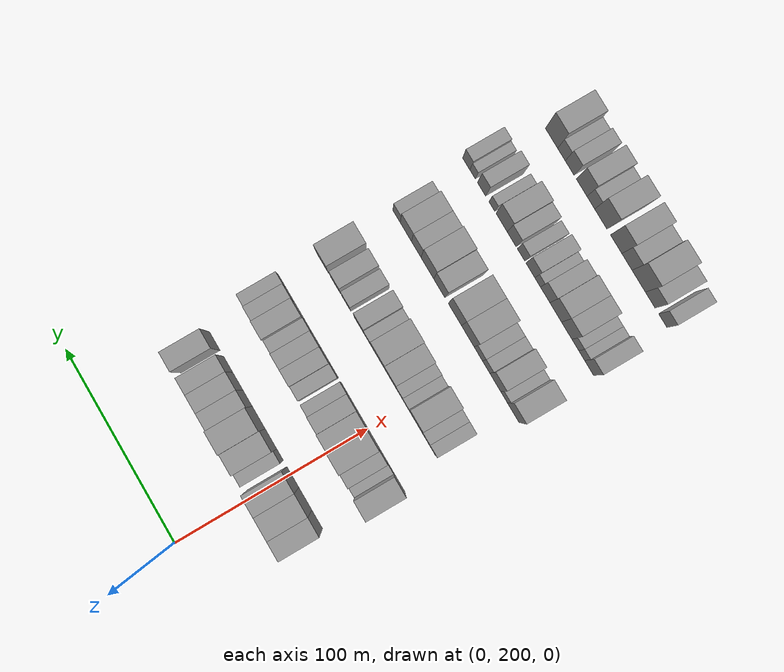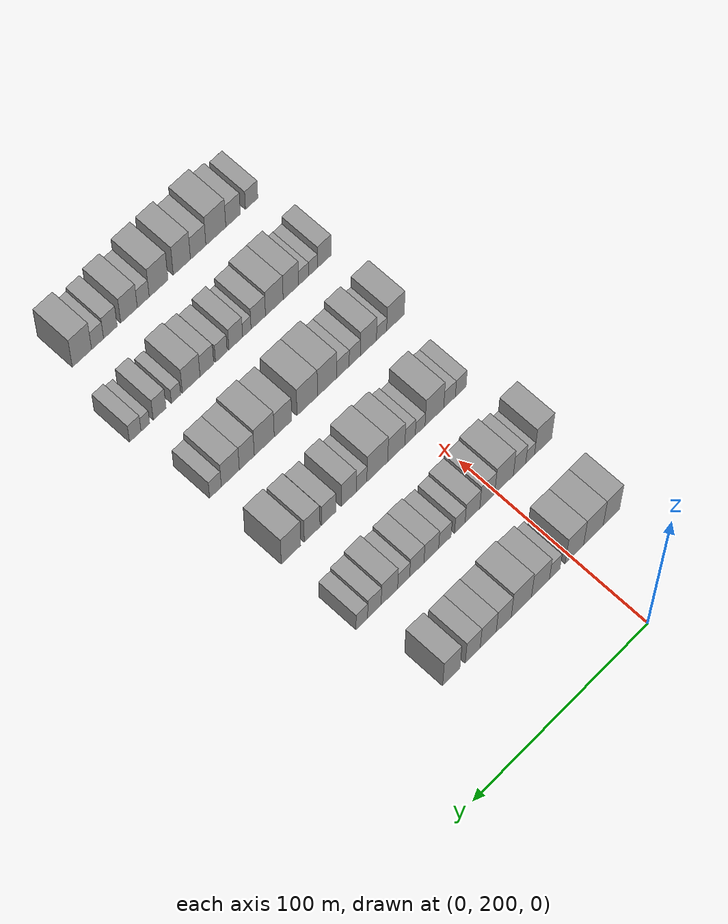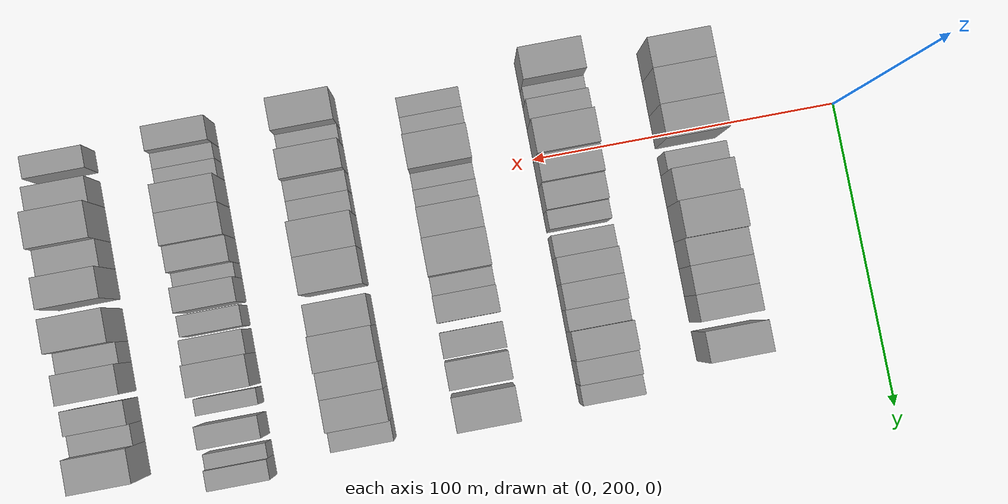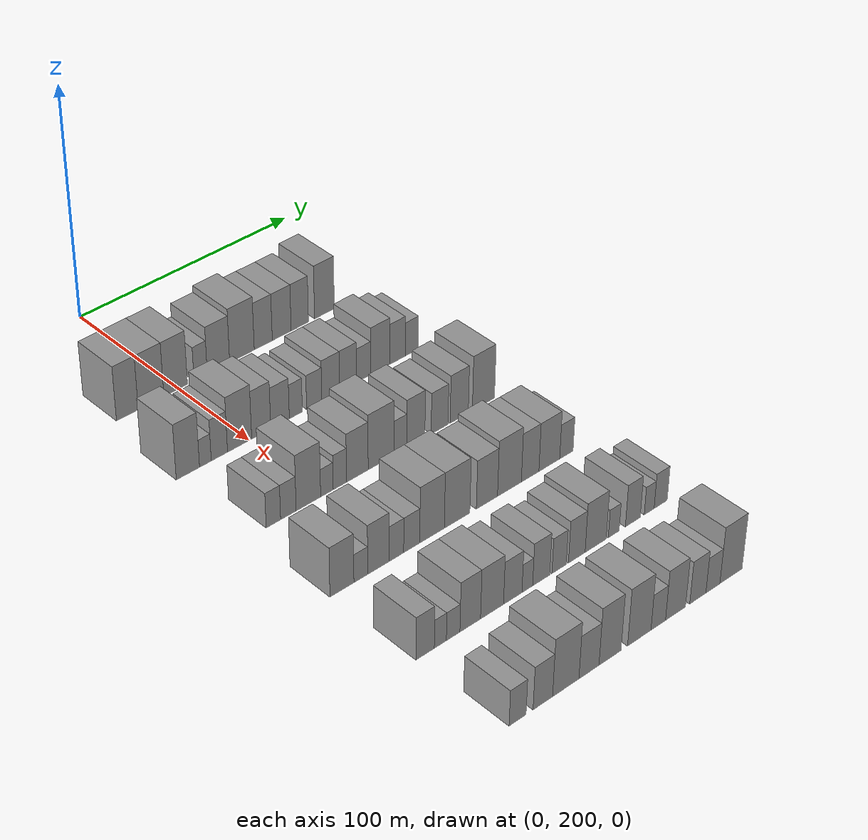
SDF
<sdf version="1.6">
 <world name="default">
  <model name="building_87">
   <static>1</static>
   <pose>50.0000 176.8110 0 0.000000 0.000000 0.000000</pose>
   <link name="link">
    <pose>0 0 12.00 0 0 0</pose>
    <collision name="collision"><geometry><box><size>20.0000 9.6549 24.0000</size></box></geometry></collision>
    <visual name="visual">
     <cast_shadows>0</cast_shadows>
     <geometry><box><size>20.0000 9.6549 24.0000</size></box></geometry>
     <material>
      <script>
       <uri>model://grey_wall/materials/scripts</uri>
       <uri>model://grey_wall/materials/textures</uri>
       <name>vrc/grey_wall</name>
      </script>
     </material>
    </visual>
   </link>
  </model>
  <model name="building_88">
   <static>1</static>
   <pose>50.0000 187.3847 0 0.000000 0.000000 0.000000</pose>
   <link name="link">
    <pose>0 0 12.00 0 0 0</pose>
    <collision name="collision"><geometry><box><size>20.0000 11.4924 24.0000</size></box></geometry></collision>
    <visual name="visual">
     <cast_shadows>0</cast_shadows>
     <geometry><box><size>20.0000 11.4924 24.0000</size></box></geometry>
     <material>
      <script>
       <uri>model://grey_wall/materials/scripts</uri>
       <uri>model://grey_wall/materials/textures</uri>
       <name>vrc/grey_wall</name>
      </script>
     </material>
    </visual>
   </link>
  </model>
  <model name="building_89">
   <static>1</static>
   <pose>50.0000 198.4945 0 0.000000 0.000000 0.000000</pose>
   <link name="link">
    <pose>0 0 12.00 0 0 0</pose>
    <collision name="collision"><geometry><box><size>20.0000 10.7272 24.0000</size></box></geometry></collision>
    <visual name="visual">
     <cast_shadows>0</cast_shadows>
     <geometry><box><size>20.0000 10.7272 24.0000</size></box></geometry>
     <material>
      <script>
       <uri>model://grey_wall/materials/scripts</uri>
       <uri>model://grey_wall/materials/textures</uri>
       <name>vrc/grey_wall</name>
      </script>
     </material>
    </visual>
   </link>
  </model>
  <model name="building_90">
   <static>1</static>
   <pose>50.0000 209.9155 0 0.000000 0.000000 0.000000</pose>
   <link name="link">
    <pose>0 0 7.50 0 0 0</pose>
    <collision name="collision"><geometry><box><size>20.0000 6.1148 15.0000</size></box></geometry></collision>
    <visual name="visual">
     <cast_shadows>0</cast_shadows>
     <geometry><box><size>20.0000 6.1148 15.0000</size></box></geometry>
     <material>
      <script>
       <uri>model://grey_wall/materials/scripts</uri>
       <uri>model://grey_wall/materials/textures</uri>
       <name>vrc/grey_wall</name>
      </script>
     </material>
    </visual>
   </link>
  </model>
  <model name="building_91">
   <static>1</static>
   <pose>50.0000 218.1866 0 0.000000 0.000000 0.000000</pose>
   <link name="link">
    <pose>0 0 10.50 0 0 0</pose>
    <collision name="collision"><geometry><box><size>20.0000 10.4274 21.0000</size></box></geometry></collision>
    <visual name="visual">
     <cast_shadows>0</cast_shadows>
     <geometry><box><size>20.0000 10.4274 21.0000</size></box></geometry>
     <material>
      <script>
       <uri>model://grey_wall/materials/scripts</uri>
       <uri>model://grey_wall/materials/textures</uri>
       <name>vrc/grey_wall</name>
      </script>
     </material>
    </visual>
   </link>
  </model>
  <model name="building_92">
   <static>1</static>
   <pose>50.0000 229.2195 0 0.000000 0.000000 0.000000</pose>
   <link name="link">
    <pose>0 0 12.00 0 0 0</pose>
    <collision name="collision"><geometry><box><size>20.0000 11.6385 24.0000</size></box></geometry></collision>
    <visual name="visual">
     <cast_shadows>0</cast_shadows>
     <geometry><box><size>20.0000 11.6385 24.0000</size></box></geometry>
     <material>
      <script>
       <uri>model://grey_wall/materials/scripts</uri>
       <uri>model://grey_wall/materials/textures</uri>
       <name>vrc/grey_wall</name>
      </script>
     </material>
    </visual>
   </link>
  </model>
  <model name="building_93">
   <static>1</static>
   <pose>50.0000 239.3570 0 0.000000 0.000000 0.000000</pose>
   <link name="link">
    <pose>0 0 10.50 0 0 0</pose>
    <collision name="collision"><geometry><box><size>20.0000 8.6364 21.0000</size></box></geometry></collision>
    <visual name="visual">
     <cast_shadows>0</cast_shadows>
     <geometry><box><size>20.0000 8.6364 21.0000</size></box></geometry>
     <material>
      <script>
       <uri>model://grey_wall/materials/scripts</uri>
       <uri>model://grey_wall/materials/textures</uri>
       <name>vrc/grey_wall</name>
      </script>
     </material>
    </visual>
   </link>
  </model>
  <model name="building_94">
   <static>1</static>
   <pose>50.0000 248.2365 0 0.000000 0.000000 0.000000</pose>
   <link name="link">
    <pose>0 0 10.50 0 0 0</pose>
    <collision name="collision"><geometry><box><size>20.0000 9.1226 21.0000</size></box></geometry></collision>
    <visual name="visual">
     <cast_shadows>0</cast_shadows>
     <geometry><box><size>20.0000 9.1226 21.0000</size></box></geometry>
     <material>
      <script>
       <uri>model://grey_wall/materials/scripts</uri>
       <uri>model://grey_wall/materials/textures</uri>
       <name>vrc/grey_wall</name>
      </script>
     </material>
    </visual>
   </link>
  </model>
  <model name="building_95">
   <static>1</static>
   <pose>50.0000 257.0243 0 0.000000 0.000000 0.000000</pose>
   <link name="link">
    <pose>0 0 10.50 0 0 0</pose>
    <collision name="collision"><geometry><box><size>20.0000 8.4530 21.0000</size></box></geometry></collision>
    <visual name="visual">
     <cast_shadows>0</cast_shadows>
     <geometry><box><size>20.0000 8.4530 21.0000</size></box></geometry>
     <material>
      <script>
       <uri>model://grey_wall/materials/scripts</uri>
       <uri>model://grey_wall/materials/textures</uri>
       <name>vrc/grey_wall</name>
      </script>
     </material>
    </visual>
   </link>
  </model>
  <model name="building_96">
   <static>1</static>
   <pose>50.0000 269.1460 0 0.000000 0.000000 0.000000</pose>
   <link name="link">
    <pose>0 0 12.00 0 0 0</pose>
    <collision name="collision"><geometry><box><size>20.0000 9.7904 24.0000</size></box></geometry></collision>
    <visual name="visual">
     <cast_shadows>0</cast_shadows>
     <geometry><box><size>20.0000 9.7904 24.0000</size></box></geometry>
     <material>
      <script>
       <uri>model://grey_wall/materials/scripts</uri>
       <uri>model://grey_wall/materials/textures</uri>
       <name>vrc/grey_wall</name>
      </script>
     </material>
    </visual>
   </link>
  </model>
  <model name="building_229">
   <static>1</static>
   <pose>90.0000 172.6757 0 0.000000 0.000000 0.000000</pose>
   <link name="link">
    <pose>0 0 12.00 0 0 0</pose>
    <collision name="collision"><geometry><box><size>20.0000 10.1629 24.0000</size></box></geometry></collision>
    <visual name="visual">
     <cast_shadows>0</cast_shadows>
     <geometry><box><size>20.0000 10.1629 24.0000</size></box></geometry>
     <material>
      <script>
       <uri>model://grey_wall/materials/scripts</uri>
       <uri>model://grey_wall/materials/textures</uri>
       <name>vrc/grey_wall</name>
      </script>
     </material>
    </visual>
   </link>
  </model>
  <model name="building_230">
   <static>1</static>
   <pose>90.0000 180.3348 0 0.000000 0.000000 0.000000</pose>
   <link name="link">
    <pose>0 0 6.00 0 0 0</pose>
    <collision name="collision"><geometry><box><size>20.0000 5.1553 12.0000</size></box></geometry></collision>
    <visual name="visual">
     <cast_shadows>0</cast_shadows>
     <geometry><box><size>20.0000 5.1553 12.0000</size></box></geometry>
     <material>
      <script>
       <uri>model://grey_wall/materials/scripts</uri>
       <uri>model://grey_wall/materials/textures</uri>
       <name>vrc/grey_wall</name>
      </script>
     </material>
    </visual>
   </link>
  </model>
  <model name="building_231">
   <static>1</static>
   <pose>90.0000 186.5304 0 0.000000 0.000000 0.000000</pose>
   <link name="link">
    <pose>0 0 9.00 0 0 0</pose>
    <collision name="collision"><geometry><box><size>20.0000 7.2361 18.0000</size></box></geometry></collision>
    <visual name="visual">
     <cast_shadows>0</cast_shadows>
     <geometry><box><size>20.0000 7.2361 18.0000</size></box></geometry>
     <material>
      <script>
       <uri>model://grey_wall/materials/scripts</uri>
       <uri>model://grey_wall/materials/textures</uri>
       <name>vrc/grey_wall</name>
      </script>
     </material>
    </visual>
   </link>
  </model>
  <model name="building_232">
   <static>1</static>
   <pose>90.0000 195.5879 0 0.000000 0.000000 0.000000</pose>
   <link name="link">
    <pose>0 0 12.00 0 0 0</pose>
    <collision name="collision"><geometry><box><size>20.0000 10.8789 24.0000</size></box></geometry></collision>
    <visual name="visual">
     <cast_shadows>0</cast_shadows>
     <geometry><box><size>20.0000 10.8789 24.0000</size></box></geometry>
     <material>
      <script>
       <uri>model://grey_wall/materials/scripts</uri>
       <uri>model://grey_wall/materials/textures</uri>
       <name>vrc/grey_wall</name>
      </script>
     </material>
    </visual>
   </link>
  </model>
  <model name="building_233">
   <static>1</static>
   <pose>90.0000 205.3652 0 0.000000 0.000000 0.000000</pose>
   <link name="link">
    <pose>0 0 10.50 0 0 0</pose>
    <collision name="collision"><geometry><box><size>20.0000 8.6756 21.0000</size></box></geometry></collision>
    <visual name="visual">
     <cast_shadows>0</cast_shadows>
     <geometry><box><size>20.0000 8.6756 21.0000</size></box></geometry>
     <material>
      <script>
       <uri>model://grey_wall/materials/scripts</uri>
       <uri>model://grey_wall/materials/textures</uri>
       <name>vrc/grey_wall</name>
      </script>
     </material>
    </visual>
   </link>
  </model>
  <model name="building_234">
   <static>1</static>
   <pose>90.0000 213.9725 0 0.000000 0.000000 0.000000</pose>
   <link name="link">
    <pose>0 0 9.00 0 0 0</pose>
    <collision name="collision"><geometry><box><size>20.0000 8.5390 18.0000</size></box></geometry></collision>
    <visual name="visual">
     <cast_shadows>0</cast_shadows>
     <geometry><box><size>20.0000 8.5390 18.0000</size></box></geometry>
     <material>
      <script>
       <uri>model://grey_wall/materials/scripts</uri>
       <uri>model://grey_wall/materials/textures</uri>
       <name>vrc/grey_wall</name>
      </script>
     </material>
    </visual>
   </link>
  </model>
  <model name="building_235">
   <static>1</static>
   <pose>90.0000 221.2577 0 0.000000 0.000000 0.000000</pose>
   <link name="link">
    <pose>0 0 7.50 0 0 0</pose>
    <collision name="collision"><geometry><box><size>20.0000 6.0314 15.0000</size></box></geometry></collision>
    <visual name="visual">
     <cast_shadows>0</cast_shadows>
     <geometry><box><size>20.0000 6.0314 15.0000</size></box></geometry>
     <material>
      <script>
       <uri>model://grey_wall/materials/scripts</uri>
       <uri>model://grey_wall/materials/textures</uri>
       <name>vrc/grey_wall</name>
      </script>
     </material>
    </visual>
   </link>
  </model>
  <model name="building_236">
   <static>1</static>
   <pose>90.0000 229.8461 0 0.000000 0.000000 0.000000</pose>
   <link name="link">
    <pose>0 0 7.50 0 0 0</pose>
    <collision name="collision"><geometry><box><size>20.0000 7.1454 15.0000</size></box></geometry></collision>
    <visual name="visual">
     <cast_shadows>0</cast_shadows>
     <geometry><box><size>20.0000 7.1454 15.0000</size></box></geometry>
     <material>
      <script>
       <uri>model://grey_wall/materials/scripts</uri>
       <uri>model://grey_wall/materials/textures</uri>
       <name>vrc/grey_wall</name>
      </script>
     </material>
    </visual>
   </link>
  </model>
  <model name="building_237">
   <static>1</static>
   <pose>90.0000 237.6304 0 0.000000 0.000000 0.000000</pose>
   <link name="link">
    <pose>0 0 9.00 0 0 0</pose>
    <collision name="collision"><geometry><box><size>20.0000 8.4232 18.0000</size></box></geometry></collision>
    <visual name="visual">
     <cast_shadows>0</cast_shadows>
     <geometry><box><size>20.0000 8.4232 18.0000</size></box></geometry>
     <material>
      <script>
       <uri>model://grey_wall/materials/scripts</uri>
       <uri>model://grey_wall/materials/textures</uri>
       <name>vrc/grey_wall</name>
      </script>
     </material>
    </visual>
   </link>
  </model>
  <model name="building_238">
   <static>1</static>
   <pose>90.0000 245.9011 0 0.000000 0.000000 0.000000</pose>
   <link name="link">
    <pose>0 0 9.00 0 0 0</pose>
    <collision name="collision"><geometry><box><size>20.0000 8.1182 18.0000</size></box></geometry></collision>
    <visual name="visual">
     <cast_shadows>0</cast_shadows>
     <geometry><box><size>20.0000 8.1182 18.0000</size></box></geometry>
     <material>
      <script>
       <uri>model://grey_wall/materials/scripts</uri>
       <uri>model://grey_wall/materials/textures</uri>
       <name>vrc/grey_wall</name>
      </script>
     </material>
    </visual>
   </link>
  </model>
  <model name="building_239">
   <static>1</static>
   <pose>90.0000 253.3798 0 0.000000 0.000000 0.000000</pose>
   <link name="link">
    <pose>0 0 7.50 0 0 0</pose>
    <collision name="collision"><geometry><box><size>20.0000 6.8392 15.0000</size></box></geometry></collision>
    <visual name="visual">
     <cast_shadows>0</cast_shadows>
     <geometry><box><size>20.0000 6.8392 15.0000</size></box></geometry>
     <material>
      <script>
       <uri>model://grey_wall/materials/scripts</uri>
       <uri>model://grey_wall/materials/textures</uri>
       <name>vrc/grey_wall</name>
      </script>
     </material>
    </visual>
   </link>
  </model>
  <model name="building_240">
   <static>1</static>
   <pose>90.0000 261.4753 0 0.000000 0.000000 0.000000</pose>
   <link name="link">
    <pose>0 0 10.50 0 0 0</pose>
    <collision name="collision"><geometry><box><size>20.0000 9.3518 21.0000</size></box></geometry></collision>
    <visual name="visual">
     <cast_shadows>0</cast_shadows>
     <geometry><box><size>20.0000 9.3518 21.0000</size></box></geometry>
     <material>
      <script>
       <uri>model://grey_wall/materials/scripts</uri>
       <uri>model://grey_wall/materials/textures</uri>
       <name>vrc/grey_wall</name>
      </script>
     </material>
    </visual>
   </link>
  </model>
  <model name="building_241">
   <static>1</static>
   <pose>90.0000 269.9665 0 0.000000 0.000000 0.000000</pose>
   <link name="link">
    <pose>0 0 9.00 0 0 0</pose>
    <collision name="collision"><geometry><box><size>20.0000 7.6307 18.0000</size></box></geometry></collision>
    <visual name="visual">
     <cast_shadows>0</cast_shadows>
     <geometry><box><size>20.0000 7.6307 18.0000</size></box></geometry>
     <material>
      <script>
       <uri>model://grey_wall/materials/scripts</uri>
       <uri>model://grey_wall/materials/textures</uri>
       <name>vrc/grey_wall</name>
      </script>
     </material>
    </visual>
   </link>
  </model>
  <model name="building_242">
   <static>1</static>
   <pose>90.0000 277.0421 0 0.000000 0.000000 0.000000</pose>
   <link name="link">
    <pose>0 0 7.50 0 0 0</pose>
    <collision name="collision"><geometry><box><size>20.0000 6.5205 15.0000</size></box></geometry></collision>
    <visual name="visual">
     <cast_shadows>0</cast_shadows>
     <geometry><box><size>20.0000 6.5205 15.0000</size></box></geometry>
     <material>
      <script>
       <uri>model://grey_wall/materials/scripts</uri>
       <uri>model://grey_wall/materials/textures</uri>
       <name>vrc/grey_wall</name>
      </script>
     </material>
    </visual>
   </link>
  </model>
  <model name="building_365">
   <static>1</static>
   <pose>130.0000 177.6103 0 0.000000 0.000000 0.000000</pose>
   <link name="link">
    <pose>0 0 7.50 0 0 0</pose>
    <collision name="collision"><geometry><box><size>20.0000 6.3147 15.0000</size></box></geometry></collision>
    <visual name="visual">
     <cast_shadows>0</cast_shadows>
     <geometry><box><size>20.0000 6.3147 15.0000</size></box></geometry>
     <material>
      <script>
       <uri>model://grey_wall/materials/scripts</uri>
       <uri>model://grey_wall/materials/textures</uri>
       <name>vrc/grey_wall</name>
      </script>
     </material>
    </visual>
   </link>
  </model>
  <model name="building_366">
   <static>1</static>
   <pose>130.0000 184.1811 0 0.000000 0.000000 0.000000</pose>
   <link name="link">
    <pose>0 0 7.50 0 0 0</pose>
    <collision name="collision"><geometry><box><size>20.0000 6.8270 15.0000</size></box></geometry></collision>
    <visual name="visual">
     <cast_shadows>0</cast_shadows>
     <geometry><box><size>20.0000 6.8270 15.0000</size></box></geometry>
     <material>
      <script>
       <uri>model://grey_wall/materials/scripts</uri>
       <uri>model://grey_wall/materials/textures</uri>
       <name>vrc/grey_wall</name>
      </script>
     </material>
    </visual>
   </link>
  </model>
  <model name="building_367">
   <static>1</static>
   <pose>130.0000 193.0386 0 0.000000 0.000000 0.000000</pose>
   <link name="link">
    <pose>0 0 12.00 0 0 0</pose>
    <collision name="collision"><geometry><box><size>20.0000 10.8879 24.0000</size></box></geometry></collision>
    <visual name="visual">
     <cast_shadows>0</cast_shadows>
     <geometry><box><size>20.0000 10.8879 24.0000</size></box></geometry>
     <material>
      <script>
       <uri>model://grey_wall/materials/scripts</uri>
       <uri>model://grey_wall/materials/textures</uri>
       <name>vrc/grey_wall</name>
      </script>
     </material>
    </visual>
   </link>
  </model>
  <model name="building_368">
   <static>1</static>
   <pose>130.0000 201.3104 0 0.000000 0.000000 0.000000</pose>
   <link name="link">
    <pose>0 0 6.00 0 0 0</pose>
    <collision name="collision"><geometry><box><size>20.0000 5.6557 12.0000</size></box></geometry></collision>
    <visual name="visual">
     <cast_shadows>0</cast_shadows>
     <geometry><box><size>20.0000 5.6557 12.0000</size></box></geometry>
     <material>
      <script>
       <uri>model://grey_wall/materials/scripts</uri>
       <uri>model://grey_wall/materials/textures</uri>
       <name>vrc/grey_wall</name>
      </script>
     </material>
    </visual>
   </link>
  </model>
  <model name="building_369">
   <static>1</static>
   <pose>130.0000 207.1561 0 0.000000 0.000000 0.000000</pose>
   <link name="link">
    <pose>0 0 7.50 0 0 0</pose>
    <collision name="collision"><geometry><box><size>20.0000 6.0357 15.0000</size></box></geometry></collision>
    <visual name="visual">
     <cast_shadows>0</cast_shadows>
     <geometry><box><size>20.0000 6.0357 15.0000</size></box></geometry>
     <material>
      <script>
       <uri>model://grey_wall/materials/scripts</uri>
       <uri>model://grey_wall/materials/textures</uri>
       <name>vrc/grey_wall</name>
      </script>
     </material>
    </visual>
   </link>
  </model>
  <model name="building_370">
   <static>1</static>
   <pose>130.0000 215.1298 0 0.000000 0.000000 0.000000</pose>
   <link name="link">
    <pose>0 0 10.50 0 0 0</pose>
    <collision name="collision"><geometry><box><size>20.0000 9.9116 21.0000</size></box></geometry></collision>
    <visual name="visual">
     <cast_shadows>0</cast_shadows>
     <geometry><box><size>20.0000 9.9116 21.0000</size></box></geometry>
     <material>
      <script>
       <uri>model://grey_wall/materials/scripts</uri>
       <uri>model://grey_wall/materials/textures</uri>
       <name>vrc/grey_wall</name>
      </script>
     </material>
    </visual>
   </link>
  </model>
  <model name="building_371">
   <static>1</static>
   <pose>130.0000 226.0778 0 0.000000 0.000000 0.000000</pose>
   <link name="link">
    <pose>0 0 12.00 0 0 0</pose>
    <collision name="collision"><geometry><box><size>20.0000 11.9844 24.0000</size></box></geometry></collision>
    <visual name="visual">
     <cast_shadows>0</cast_shadows>
     <geometry><box><size>20.0000 11.9844 24.0000</size></box></geometry>
     <material>
      <script>
       <uri>model://grey_wall/materials/scripts</uri>
       <uri>model://grey_wall/materials/textures</uri>
       <name>vrc/grey_wall</name>
      </script>
     </material>
    </visual>
   </link>
  </model>
  <model name="building_372">
   <static>1</static>
   <pose>130.0000 235.0966 0 0.000000 0.000000 0.000000</pose>
   <link name="link">
    <pose>0 0 7.50 0 0 0</pose>
    <collision name="collision"><geometry><box><size>20.0000 6.0532 15.0000</size></box></geometry></collision>
    <visual name="visual">
     <cast_shadows>0</cast_shadows>
     <geometry><box><size>20.0000 6.0532 15.0000</size></box></geometry>
     <material>
      <script>
       <uri>model://grey_wall/materials/scripts</uri>
       <uri>model://grey_wall/materials/textures</uri>
       <name>vrc/grey_wall</name>
      </script>
     </material>
    </visual>
   </link>
  </model>
  <model name="building_373">
   <static>1</static>
   <pose>130.0000 242.4002 0 0.000000 0.000000 0.000000</pose>
   <link name="link">
    <pose>0 0 10.50 0 0 0</pose>
    <collision name="collision"><geometry><box><size>20.0000 8.5541 21.0000</size></box></geometry></collision>
    <visual name="visual">
     <cast_shadows>0</cast_shadows>
     <geometry><box><size>20.0000 8.5541 21.0000</size></box></geometry>
     <material>
      <script>
       <uri>model://grey_wall/materials/scripts</uri>
       <uri>model://grey_wall/materials/textures</uri>
       <name>vrc/grey_wall</name>
      </script>
     </material>
    </visual>
   </link>
  </model>
  <model name="building_374">
   <static>1</static>
   <pose>130.0000 253.7446 0 0.000000 0.000000 0.000000</pose>
   <link name="link">
    <pose>0 0 9.00 0 0 0</pose>
    <collision name="collision"><geometry><box><size>20.0000 8.1347 18.0000</size></box></geometry></collision>
    <visual name="visual">
     <cast_shadows>0</cast_shadows>
     <geometry><box><size>20.0000 8.1347 18.0000</size></box></geometry>
     <material>
      <script>
       <uri>model://grey_wall/materials/scripts</uri>
       <uri>model://grey_wall/materials/textures</uri>
       <name>vrc/grey_wall</name>
      </script>
     </material>
    </visual>
   </link>
  </model>
  <model name="building_375">
   <static>1</static>
   <pose>130.0000 263.2402 0 0.000000 0.000000 0.000000</pose>
   <link name="link">
    <pose>0 0 10.50 0 0 0</pose>
    <collision name="collision"><geometry><box><size>20.0000 8.8566 21.0000</size></box></geometry></collision>
    <visual name="visual">
     <cast_shadows>0</cast_shadows>
     <geometry><box><size>20.0000 8.8566 21.0000</size></box></geometry>
     <material>
      <script>
       <uri>model://grey_wall/materials/scripts</uri>
       <uri>model://grey_wall/materials/textures</uri>
       <name>vrc/grey_wall</name>
      </script>
     </material>
    </visual>
   </link>
  </model>
  <model name="building_376">
   <static>1</static>
   <pose>130.0000 275.1409 0 0.000000 0.000000 0.000000</pose>
   <link name="link">
    <pose>0 0 12.00 0 0 0</pose>
    <collision name="collision"><geometry><box><size>20.0000 10.9447 24.0000</size></box></geometry></collision>
    <visual name="visual">
     <cast_shadows>0</cast_shadows>
     <geometry><box><size>20.0000 10.9447 24.0000</size></box></geometry>
     <material>
      <script>
       <uri>model://grey_wall/materials/scripts</uri>
       <uri>model://grey_wall/materials/textures</uri>
       <name>vrc/grey_wall</name>
      </script>
     </material>
    </visual>
   </link>
  </model>
  <model name="building_503">
   <static>1</static>
   <pose>170.0000 173.2018 0 0.000000 0.000000 0.000000</pose>
   <link name="link">
    <pose>0 0 10.50 0 0 0</pose>
    <collision name="collision"><geometry><box><size>20.0000 10.3179 21.0000</size></box></geometry></collision>
    <visual name="visual">
     <cast_shadows>0</cast_shadows>
     <geometry><box><size>20.0000 10.3179 21.0000</size></box></geometry>
     <material>
      <script>
       <uri>model://grey_wall/materials/scripts</uri>
       <uri>model://grey_wall/materials/textures</uri>
       <name>vrc/grey_wall</name>
      </script>
     </material>
    </visual>
   </link>
  </model>
  <model name="building_504">
   <static>1</static>
   <pose>170.0000 181.3502 0 0.000000 0.000000 0.000000</pose>
   <link name="link">
    <pose>0 0 6.00 0 0 0</pose>
    <collision name="collision"><geometry><box><size>20.0000 5.9787 12.0000</size></box></geometry></collision>
    <visual name="visual">
     <cast_shadows>0</cast_shadows>
     <geometry><box><size>20.0000 5.9787 12.0000</size></box></geometry>
     <material>
      <script>
       <uri>model://grey_wall/materials/scripts</uri>
       <uri>model://grey_wall/materials/textures</uri>
       <name>vrc/grey_wall</name>
      </script>
     </material>
    </visual>
   </link>
  </model>
  <model name="building_505">
   <static>1</static>
   <pose>170.0000 189.0391 0 0.000000 0.000000 0.000000</pose>
   <link name="link">
    <pose>0 0 10.50 0 0 0</pose>
    <collision name="collision"><geometry><box><size>20.0000 9.3990 21.0000</size></box></geometry></collision>
    <visual name="visual">
     <cast_shadows>0</cast_shadows>
     <geometry><box><size>20.0000 9.3990 21.0000</size></box></geometry>
     <material>
      <script>
       <uri>model://grey_wall/materials/scripts</uri>
       <uri>model://grey_wall/materials/textures</uri>
       <name>vrc/grey_wall</name>
      </script>
     </material>
    </visual>
   </link>
  </model>
  <model name="building_506">
   <static>1</static>
   <pose>170.0000 196.9873 0 0.000000 0.000000 0.000000</pose>
   <link name="link">
    <pose>0 0 7.50 0 0 0</pose>
    <collision name="collision"><geometry><box><size>20.0000 6.4974 15.0000</size></box></geometry></collision>
    <visual name="visual">
     <cast_shadows>0</cast_shadows>
     <geometry><box><size>20.0000 6.4974 15.0000</size></box></geometry>
     <material>
      <script>
       <uri>model://grey_wall/materials/scripts</uri>
       <uri>model://grey_wall/materials/textures</uri>
       <name>vrc/grey_wall</name>
      </script>
     </material>
    </visual>
   </link>
  </model>
  <model name="building_507">
   <static>1</static>
   <pose>170.0000 203.8394 0 0.000000 0.000000 0.000000</pose>
   <link name="link">
    <pose>0 0 7.50 0 0 0</pose>
    <collision name="collision"><geometry><box><size>20.0000 7.2068 15.0000</size></box></geometry></collision>
    <visual name="visual">
     <cast_shadows>0</cast_shadows>
     <geometry><box><size>20.0000 7.2068 15.0000</size></box></geometry>
     <material>
      <script>
       <uri>model://grey_wall/materials/scripts</uri>
       <uri>model://grey_wall/materials/textures</uri>
       <name>vrc/grey_wall</name>
      </script>
     </material>
    </visual>
   </link>
  </model>
  <model name="building_508">
   <static>1</static>
   <pose>170.0000 213.0315 0 0.000000 0.000000 0.000000</pose>
   <link name="link">
    <pose>0 0 12.00 0 0 0</pose>
    <collision name="collision"><geometry><box><size>20.0000 11.1772 24.0000</size></box></geometry></collision>
    <visual name="visual">
     <cast_shadows>0</cast_shadows>
     <geometry><box><size>20.0000 11.1772 24.0000</size></box></geometry>
     <material>
      <script>
       <uri>model://grey_wall/materials/scripts</uri>
       <uri>model://grey_wall/materials/textures</uri>
       <name>vrc/grey_wall</name>
      </script>
     </material>
    </visual>
   </link>
  </model>
  <model name="building_509">
   <static>1</static>
   <pose>170.0000 224.4998 0 0.000000 0.000000 0.000000</pose>
   <link name="link">
    <pose>0 0 12.00 0 0 0</pose>
    <collision name="collision"><geometry><box><size>20.0000 11.7595 24.0000</size></box></geometry></collision>
    <visual name="visual">
     <cast_shadows>0</cast_shadows>
     <geometry><box><size>20.0000 11.7595 24.0000</size></box></geometry>
     <material>
      <script>
       <uri>model://grey_wall/materials/scripts</uri>
       <uri>model://grey_wall/materials/textures</uri>
       <name>vrc/grey_wall</name>
      </script>
     </material>
    </visual>
   </link>
  </model>
  <model name="building_510">
   <static>1</static>
   <pose>170.0000 238.3627 0 0.000000 0.000000 0.000000</pose>
   <link name="link">
    <pose>0 0 10.50 0 0 0</pose>
    <collision name="collision"><geometry><box><size>20.0000 9.9662 21.0000</size></box></geometry></collision>
    <visual name="visual">
     <cast_shadows>0</cast_shadows>
     <geometry><box><size>20.0000 9.9662 21.0000</size></box></geometry>
     <material>
      <script>
       <uri>model://grey_wall/materials/scripts</uri>
       <uri>model://grey_wall/materials/textures</uri>
       <name>vrc/grey_wall</name>
      </script>
     </material>
    </visual>
   </link>
  </model>
  <model name="building_511">
   <static>1</static>
   <pose>170.0000 249.0247 0 0.000000 0.000000 0.000000</pose>
   <link name="link">
    <pose>0 0 12.00 0 0 0</pose>
    <collision name="collision"><geometry><box><size>20.0000 11.3579 24.0000</size></box></geometry></collision>
    <visual name="visual">
     <cast_shadows>0</cast_shadows>
     <geometry><box><size>20.0000 11.3579 24.0000</size></box></geometry>
     <material>
      <script>
       <uri>model://grey_wall/materials/scripts</uri>
       <uri>model://grey_wall/materials/textures</uri>
       <name>vrc/grey_wall</name>
      </script>
     </material>
    </visual>
   </link>
  </model>
  <model name="building_512">
   <static>1</static>
   <pose>170.0000 258.9443 0 0.000000 0.000000 0.000000</pose>
   <link name="link">
    <pose>0 0 10.50 0 0 0</pose>
    <collision name="collision"><geometry><box><size>20.0000 8.4813 21.0000</size></box></geometry></collision>
    <visual name="visual">
     <cast_shadows>0</cast_shadows>
     <geometry><box><size>20.0000 8.4813 21.0000</size></box></geometry>
     <material>
      <script>
       <uri>model://grey_wall/materials/scripts</uri>
       <uri>model://grey_wall/materials/textures</uri>
       <name>vrc/grey_wall</name>
      </script>
     </material>
    </visual>
   </link>
  </model>
  <model name="building_513">
   <static>1</static>
   <pose>170.0000 268.2589 0 0.000000 0.000000 0.000000</pose>
   <link name="link">
    <pose>0 0 10.50 0 0 0</pose>
    <collision name="collision"><geometry><box><size>20.0000 10.1478 21.0000</size></box></geometry></collision>
    <visual name="visual">
     <cast_shadows>0</cast_shadows>
     <geometry><box><size>20.0000 10.1478 21.0000</size></box></geometry>
     <material>
      <script>
       <uri>model://grey_wall/materials/scripts</uri>
       <uri>model://grey_wall/materials/textures</uri>
       <name>vrc/grey_wall</name>
      </script>
     </material>
    </visual>
   </link>
  </model>
  <model name="building_514">
   <static>1</static>
   <pose>170.0000 276.6411 0 0.000000 0.000000 0.000000</pose>
   <link name="link">
    <pose>0 0 7.50 0 0 0</pose>
    <collision name="collision"><geometry><box><size>20.0000 6.6167 15.0000</size></box></geometry></collision>
    <visual name="visual">
     <cast_shadows>0</cast_shadows>
     <geometry><box><size>20.0000 6.6167 15.0000</size></box></geometry>
     <material>
      <script>
       <uri>model://grey_wall/materials/scripts</uri>
       <uri>model://grey_wall/materials/textures</uri>
       <name>vrc/grey_wall</name>
      </script>
     </material>
    </visual>
   </link>
  </model>
  <model name="building_629">
   <static>1</static>
   <pose>210.0000 172.9639 0 0.000000 0.000000 0.000000</pose>
   <link name="link">
    <pose>0 0 9.00 0 0 0</pose>
    <collision name="collision"><geometry><box><size>20.0000 7.8464 18.0000</size></box></geometry></collision>
    <visual name="visual">
     <cast_shadows>0</cast_shadows>
     <geometry><box><size>20.0000 7.8464 18.0000</size></box></geometry>
     <material>
      <script>
       <uri>model://grey_wall/materials/scripts</uri>
       <uri>model://grey_wall/materials/textures</uri>
       <name>vrc/grey_wall</name>
      </script>
     </material>
    </visual>
   </link>
  </model>
  <model name="building_630">
   <static>1</static>
   <pose>210.0000 179.4809 0 0.000000 0.000000 0.000000</pose>
   <link name="link">
    <pose>0 0 6.00 0 0 0</pose>
    <collision name="collision"><geometry><box><size>20.0000 5.1876 12.0000</size></box></geometry></collision>
    <visual name="visual">
     <cast_shadows>0</cast_shadows>
     <geometry><box><size>20.0000 5.1876 12.0000</size></box></geometry>
     <material>
      <script>
       <uri>model://grey_wall/materials/scripts</uri>
       <uri>model://grey_wall/materials/textures</uri>
       <name>vrc/grey_wall</name>
      </script>
     </material>
    </visual>
   </link>
  </model>
  <model name="building_631">
   <static>1</static>
   <pose>210.0000 185.0229 0 0.000000 0.000000 0.000000</pose>
   <link name="link">
    <pose>0 0 6.00 0 0 0</pose>
    <collision name="collision"><geometry><box><size>20.0000 5.8966 12.0000</size></box></geometry></collision>
    <visual name="visual">
     <cast_shadows>0</cast_shadows>
     <geometry><box><size>20.0000 5.8966 12.0000</size></box></geometry>
     <material>
      <script>
       <uri>model://grey_wall/materials/scripts</uri>
       <uri>model://grey_wall/materials/textures</uri>
       <name>vrc/grey_wall</name>
      </script>
     </material>
    </visual>
   </link>
  </model>
  <model name="building_632">
   <static>1</static>
   <pose>210.0000 192.4961 0 0.000000 0.000000 0.000000</pose>
   <link name="link">
    <pose>0 0 10.50 0 0 0</pose>
    <collision name="collision"><geometry><box><size>20.0000 9.0498 21.0000</size></box></geometry></collision>
    <visual name="visual">
     <cast_shadows>0</cast_shadows>
     <geometry><box><size>20.0000 9.0498 21.0000</size></box></geometry>
     <material>
      <script>
       <uri>model://grey_wall/materials/scripts</uri>
       <uri>model://grey_wall/materials/textures</uri>
       <name>vrc/grey_wall</name>
      </script>
     </material>
    </visual>
   </link>
  </model>
  <model name="building_633">
   <static>1</static>
   <pose>210.0000 202.1435 0 0.000000 0.000000 0.000000</pose>
   <link name="link">
    <pose>0 0 10.50 0 0 0</pose>
    <collision name="collision"><geometry><box><size>20.0000 10.2449 21.0000</size></box></geometry></collision>
    <visual name="visual">
     <cast_shadows>0</cast_shadows>
     <geometry><box><size>20.0000 10.2449 21.0000</size></box></geometry>
     <material>
      <script>
       <uri>model://grey_wall/materials/scripts</uri>
       <uri>model://grey_wall/materials/textures</uri>
       <name>vrc/grey_wall</name>
      </script>
     </material>
    </visual>
   </link>
  </model>
  <model name="building_634">
   <static>1</static>
   <pose>210.0000 211.4252 0 0.000000 0.000000 0.000000</pose>
   <link name="link">
    <pose>0 0 9.00 0 0 0</pose>
    <collision name="collision"><geometry><box><size>20.0000 8.3184 18.0000</size></box></geometry></collision>
    <visual name="visual">
     <cast_shadows>0</cast_shadows>
     <geometry><box><size>20.0000 8.3184 18.0000</size></box></geometry>
     <material>
      <script>
       <uri>model://grey_wall/materials/scripts</uri>
       <uri>model://grey_wall/materials/textures</uri>
       <name>vrc/grey_wall</name>
      </script>
     </material>
    </visual>
   </link>
  </model>
  <model name="building_635">
   <static>1</static>
   <pose>210.0000 218.0142 0 0.000000 0.000000 0.000000</pose>
   <link name="link">
    <pose>0 0 6.00 0 0 0</pose>
    <collision name="collision"><geometry><box><size>20.0000 4.8594 12.0000</size></box></geometry></collision>
    <visual name="visual">
     <cast_shadows>0</cast_shadows>
     <geometry><box><size>20.0000 4.8594 12.0000</size></box></geometry>
     <material>
      <script>
       <uri>model://grey_wall/materials/scripts</uri>
       <uri>model://grey_wall/materials/textures</uri>
       <name>vrc/grey_wall</name>
      </script>
     </material>
    </visual>
   </link>
  </model>
  <model name="building_636">
   <static>1</static>
   <pose>210.0000 224.3805 0 0.000000 0.000000 0.000000</pose>
   <link name="link">
    <pose>0 0 9.00 0 0 0</pose>
    <collision name="collision"><geometry><box><size>20.0000 7.8732 18.0000</size></box></geometry></collision>
    <visual name="visual">
     <cast_shadows>0</cast_shadows>
     <geometry><box><size>20.0000 7.8732 18.0000</size></box></geometry>
     <material>
      <script>
       <uri>model://grey_wall/materials/scripts</uri>
       <uri>model://grey_wall/materials/textures</uri>
       <name>vrc/grey_wall</name>
      </script>
     </material>
    </visual>
   </link>
  </model>
  <model name="building_637">
   <static>1</static>
   <pose>210.0000 232.6534 0 0.000000 0.000000 0.000000</pose>
   <link name="link">
    <pose>0 0 7.50 0 0 0</pose>
    <collision name="collision"><geometry><box><size>20.0000 6.6727 15.0000</size></box></geometry></collision>
    <visual name="visual">
     <cast_shadows>0</cast_shadows>
     <geometry><box><size>20.0000 6.6727 15.0000</size></box></geometry>
     <material>
      <script>
       <uri>model://grey_wall/materials/scripts</uri>
       <uri>model://grey_wall/materials/textures</uri>
       <name>vrc/grey_wall</name>
      </script>
     </material>
    </visual>
   </link>
  </model>
  <model name="building_638">
   <static>1</static>
   <pose>210.0000 240.9076 0 0.000000 0.000000 0.000000</pose>
   <link name="link">
    <pose>0 0 9.00 0 0 0</pose>
    <collision name="collision"><geometry><box><size>20.0000 7.8357 18.0000</size></box></geometry></collision>
    <visual name="visual">
     <cast_shadows>0</cast_shadows>
     <geometry><box><size>20.0000 7.8357 18.0000</size></box></geometry>
     <material>
      <script>
       <uri>model://grey_wall/materials/scripts</uri>
       <uri>model://grey_wall/materials/textures</uri>
       <name>vrc/grey_wall</name>
      </script>
     </material>
    </visual>
   </link>
  </model>
  <model name="building_639">
   <static>1</static>
   <pose>210.0000 249.8426 0 0.000000 0.000000 0.000000</pose>
   <link name="link">
    <pose>0 0 10.50 0 0 0</pose>
    <collision name="collision"><geometry><box><size>20.0000 10.0343 21.0000</size></box></geometry></collision>
    <visual name="visual">
     <cast_shadows>0</cast_shadows>
     <geometry><box><size>20.0000 10.0343 21.0000</size></box></geometry>
     <material>
      <script>
       <uri>model://grey_wall/materials/scripts</uri>
       <uri>model://grey_wall/materials/textures</uri>
       <name>vrc/grey_wall</name>
      </script>
     </material>
    </visual>
   </link>
  </model>
  <model name="building_640">
   <static>1</static>
   <pose>210.0000 258.4802 0 0.000000 0.000000 0.000000</pose>
   <link name="link">
    <pose>0 0 6.00 0 0 0</pose>
    <collision name="collision"><geometry><box><size>20.0000 5.2409 12.0000</size></box></geometry></collision>
    <visual name="visual">
     <cast_shadows>0</cast_shadows>
     <geometry><box><size>20.0000 5.2409 12.0000</size></box></geometry>
     <material>
      <script>
       <uri>model://grey_wall/materials/scripts</uri>
       <uri>model://grey_wall/materials/textures</uri>
       <name>vrc/grey_wall</name>
      </script>
     </material>
    </visual>
   </link>
  </model>
  <model name="building_641">
   <static>1</static>
   <pose>210.0000 267.7185 0 0.000000 0.000000 0.000000</pose>
   <link name="link">
    <pose>0 0 9.00 0 0 0</pose>
    <collision name="collision"><geometry><box><size>20.0000 7.2357 18.0000</size></box></geometry></collision>
    <visual name="visual">
     <cast_shadows>0</cast_shadows>
     <geometry><box><size>20.0000 7.2357 18.0000</size></box></geometry>
     <material>
      <script>
       <uri>model://grey_wall/materials/scripts</uri>
       <uri>model://grey_wall/materials/textures</uri>
       <name>vrc/grey_wall</name>
      </script>
     </material>
    </visual>
   </link>
  </model>
  <model name="building_642">
   <static>1</static>
   <pose>210.0000 275.7657 0 0.000000 0.000000 0.000000</pose>
   <link name="link">
    <pose>0 0 6.00 0 0 0</pose>
    <collision name="collision"><geometry><box><size>20.0000 4.8587 12.0000</size></box></geometry></collision>
    <visual name="visual">
     <cast_shadows>0</cast_shadows>
     <geometry><box><size>20.0000 4.8587 12.0000</size></box></geometry>
     <material>
      <script>
       <uri>model://grey_wall/materials/scripts</uri>
       <uri>model://grey_wall/materials/textures</uri>
       <name>vrc/grey_wall</name>
      </script>
     </material>
    </visual>
   </link>
  </model>
  <model name="building_643">
   <static>1</static>
   <pose>210.0000 281.4317 0 0.000000 0.000000 0.000000</pose>
   <link name="link">
    <pose>0 0 7.50 0 0 0</pose>
    <collision name="collision"><geometry><box><size>20.0000 6.4734 15.0000</size></box></geometry></collision>
    <visual name="visual">
     <cast_shadows>0</cast_shadows>
     <geometry><box><size>20.0000 6.4734 15.0000</size></box></geometry>
     <material>
      <script>
       <uri>model://grey_wall/materials/scripts</uri>
       <uri>model://grey_wall/materials/textures</uri>
       <name>vrc/grey_wall</name>
      </script>
     </material>
    </visual>
   </link>
  </model>
  <model name="building_770">
   <static>1</static>
   <pose>250.0000 174.3134 0 0.000000 0.000000 0.000000</pose>
   <link name="link">
    <pose>0 0 7.50 0 0 0</pose>
    <collision name="collision"><geometry><box><size>20.0000 7.2418 15.0000</size></box></geometry></collision>
    <visual name="visual">
     <cast_shadows>0</cast_shadows>
     <geometry><box><size>20.0000 7.2418 15.0000</size></box></geometry>
     <material>
      <script>
       <uri>model://grey_wall/materials/scripts</uri>
       <uri>model://grey_wall/materials/textures</uri>
       <name>vrc/grey_wall</name>
      </script>
     </material>
    </visual>
   </link>
  </model>
  <model name="building_771">
   <static>1</static>
   <pose>250.0000 185.1627 0 0.000000 0.000000 0.000000</pose>
   <link name="link">
    <pose>0 0 9.00 0 0 0</pose>
    <collision name="collision"><geometry><box><size>20.0000 8.4569 18.0000</size></box></geometry></collision>
    <visual name="visual">
     <cast_shadows>0</cast_shadows>
     <geometry><box><size>20.0000 8.4569 18.0000</size></box></geometry>
     <material>
      <script>
       <uri>model://grey_wall/materials/scripts</uri>
       <uri>model://grey_wall/materials/textures</uri>
       <name>vrc/grey_wall</name>
      </script>
     </material>
    </visual>
   </link>
  </model>
  <model name="building_772">
   <static>1</static>
   <pose>250.0000 195.1851 0 0.000000 0.000000 0.000000</pose>
   <link name="link">
    <pose>0 0 12.00 0 0 0</pose>
    <collision name="collision"><geometry><box><size>20.0000 11.5879 24.0000</size></box></geometry></collision>
    <visual name="visual">
     <cast_shadows>0</cast_shadows>
     <geometry><box><size>20.0000 11.5879 24.0000</size></box></geometry>
     <material>
      <script>
       <uri>model://grey_wall/materials/scripts</uri>
       <uri>model://grey_wall/materials/textures</uri>
       <name>vrc/grey_wall</name>
      </script>
     </material>
    </visual>
   </link>
  </model>
  <model name="building_773">
   <static>1</static>
   <pose>250.0000 205.4446 0 0.000000 0.000000 0.000000</pose>
   <link name="link">
    <pose>0 0 9.00 0 0 0</pose>
    <collision name="collision"><geometry><box><size>20.0000 8.9310 18.0000</size></box></geometry></collision>
    <visual name="visual">
     <cast_shadows>0</cast_shadows>
     <geometry><box><size>20.0000 8.9310 18.0000</size></box></geometry>
     <material>
      <script>
       <uri>model://grey_wall/materials/scripts</uri>
       <uri>model://grey_wall/materials/textures</uri>
       <name>vrc/grey_wall</name>
      </script>
     </material>
    </visual>
   </link>
  </model>
  <model name="building_774">
   <static>1</static>
   <pose>250.0000 214.8825 0 0.000000 0.000000 0.000000</pose>
   <link name="link">
    <pose>0 0 12.00 0 0 0</pose>
    <collision name="collision"><geometry><box><size>20.0000 9.9449 24.0000</size></box></geometry></collision>
    <visual name="visual">
     <cast_shadows>0</cast_shadows>
     <geometry><box><size>20.0000 9.9449 24.0000</size></box></geometry>
     <material>
      <script>
       <uri>model://grey_wall/materials/scripts</uri>
       <uri>model://grey_wall/materials/textures</uri>
       <name>vrc/grey_wall</name>
      </script>
     </material>
    </visual>
   </link>
  </model>
  <model name="building_775">
   <static>1</static>
   <pose>250.0000 228.2462 0 0.000000 0.000000 0.000000</pose>
   <link name="link">
    <pose>0 0 12.00 0 0 0</pose>
    <collision name="collision"><geometry><box><size>20.0000 10.7825 24.0000</size></box></geometry></collision>
    <visual name="visual">
     <cast_shadows>0</cast_shadows>
     <geometry><box><size>20.0000 10.7825 24.0000</size></box></geometry>
     <material>
      <script>
       <uri>model://grey_wall/materials/scripts</uri>
       <uri>model://grey_wall/materials/textures</uri>
       <name>vrc/grey_wall</name>
      </script>
     </material>
    </visual>
   </link>
  </model>
  <model name="building_776">
   <static>1</static>
   <pose>250.0000 237.0295 0 0.000000 0.000000 0.000000</pose>
   <link name="link">
    <pose>0 0 7.50 0 0 0</pose>
    <collision name="collision"><geometry><box><size>20.0000 6.7841 15.0000</size></box></geometry></collision>
    <visual name="visual">
     <cast_shadows>0</cast_shadows>
     <geometry><box><size>20.0000 6.7841 15.0000</size></box></geometry>
     <material>
      <script>
       <uri>model://grey_wall/materials/scripts</uri>
       <uri>model://grey_wall/materials/textures</uri>
       <name>vrc/grey_wall</name>
      </script>
     </material>
    </visual>
   </link>
  </model>
  <model name="building_777">
   <static>1</static>
   <pose>250.0000 245.1501 0 0.000000 0.000000 0.000000</pose>
   <link name="link">
    <pose>0 0 10.50 0 0 0</pose>
    <collision name="collision"><geometry><box><size>20.0000 9.4572 21.0000</size></box></geometry></collision>
    <visual name="visual">
     <cast_shadows>0</cast_shadows>
     <geometry><box><size>20.0000 9.4572 21.0000</size></box></geometry>
     <material>
      <script>
       <uri>model://grey_wall/materials/scripts</uri>
       <uri>model://grey_wall/materials/textures</uri>
       <name>vrc/grey_wall</name>
      </script>
     </material>
    </visual>
   </link>
  </model>
  <model name="building_778">
   <static>1</static>
   <pose>250.0000 255.7415 0 0.000000 0.000000 0.000000</pose>
   <link name="link">
    <pose>0 0 9.00 0 0 0</pose>
    <collision name="collision"><geometry><box><size>20.0000 7.7257 18.0000</size></box></geometry></collision>
    <visual name="visual">
     <cast_shadows>0</cast_shadows>
     <geometry><box><size>20.0000 7.7257 18.0000</size></box></geometry>
     <material>
      <script>
       <uri>model://grey_wall/materials/scripts</uri>
       <uri>model://grey_wall/materials/textures</uri>
       <name>vrc/grey_wall</name>
      </script>
     </material>
    </visual>
   </link>
  </model>
  <model name="building_779">
   <static>1</static>
   <pose>250.0000 262.9912 0 0.000000 0.000000 0.000000</pose>
   <link name="link">
    <pose>0 0 7.50 0 0 0</pose>
    <collision name="collision"><geometry><box><size>20.0000 6.7737 15.0000</size></box></geometry></collision>
    <visual name="visual">
     <cast_shadows>0</cast_shadows>
     <geometry><box><size>20.0000 6.7737 15.0000</size></box></geometry>
     <material>
      <script>
       <uri>model://grey_wall/materials/scripts</uri>
       <uri>model://grey_wall/materials/textures</uri>
       <name>vrc/grey_wall</name>
      </script>
     </material>
    </visual>
   </link>
  </model>
  <model name="building_780">
   <static>1</static>
   <pose>250.0000 271.8091 0 0.000000 0.000000 0.000000</pose>
   <link name="link">
    <pose>0 0 12.00 0 0 0</pose>
    <collision name="collision"><geometry><box><size>20.0000 10.8621 24.0000</size></box></geometry></collision>
    <visual name="visual">
     <cast_shadows>0</cast_shadows>
     <geometry><box><size>20.0000 10.8621 24.0000</size></box></geometry>
     <material>
      <script>
       <uri>model://grey_wall/materials/scripts</uri>
       <uri>model://grey_wall/materials/textures</uri>
       <name>vrc/grey_wall</name>
      </script>
     </material>
    </visual>
   </link>
  </model>
 </world>
</sdf>
